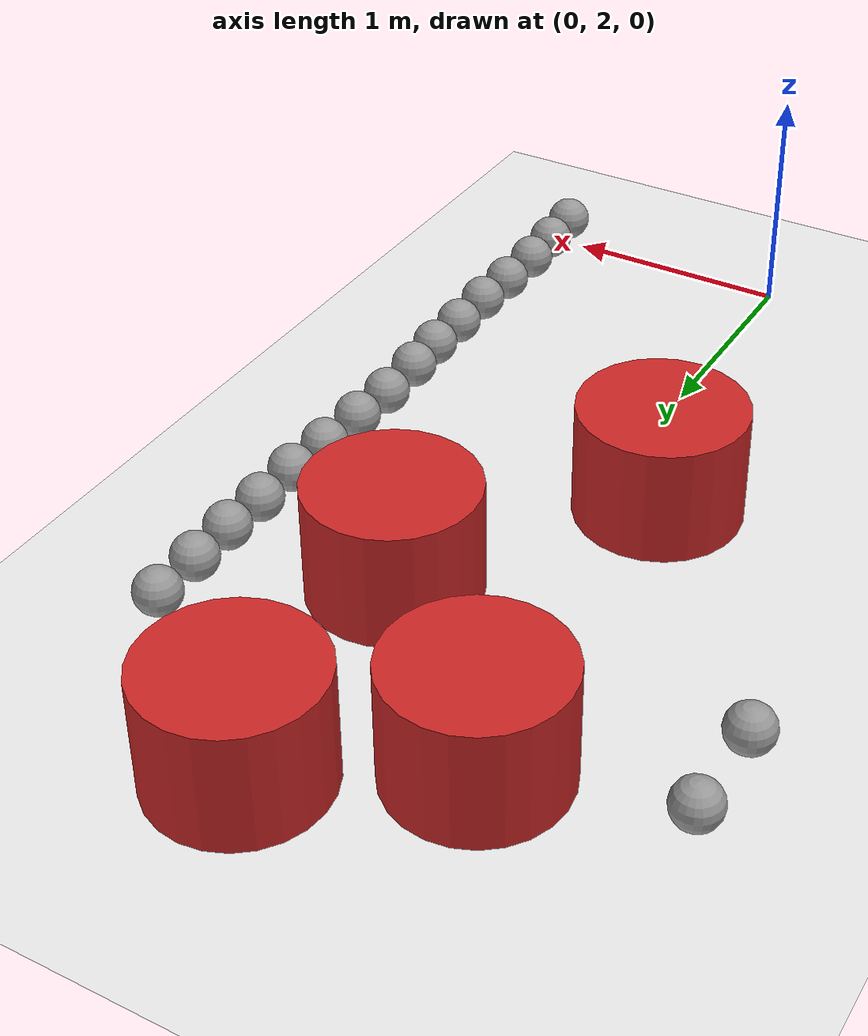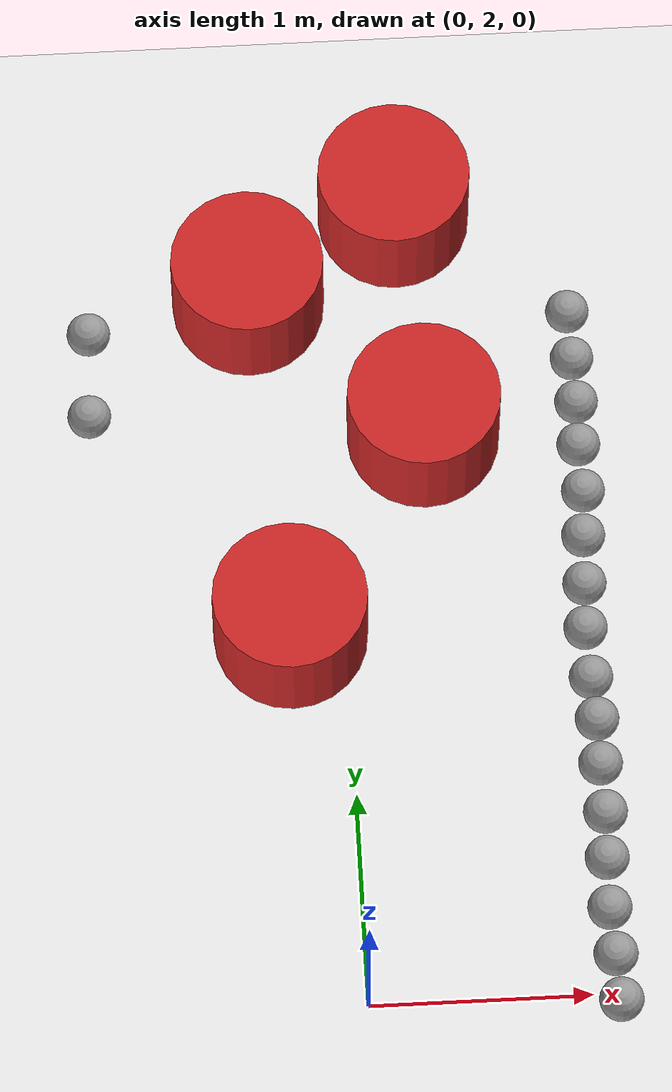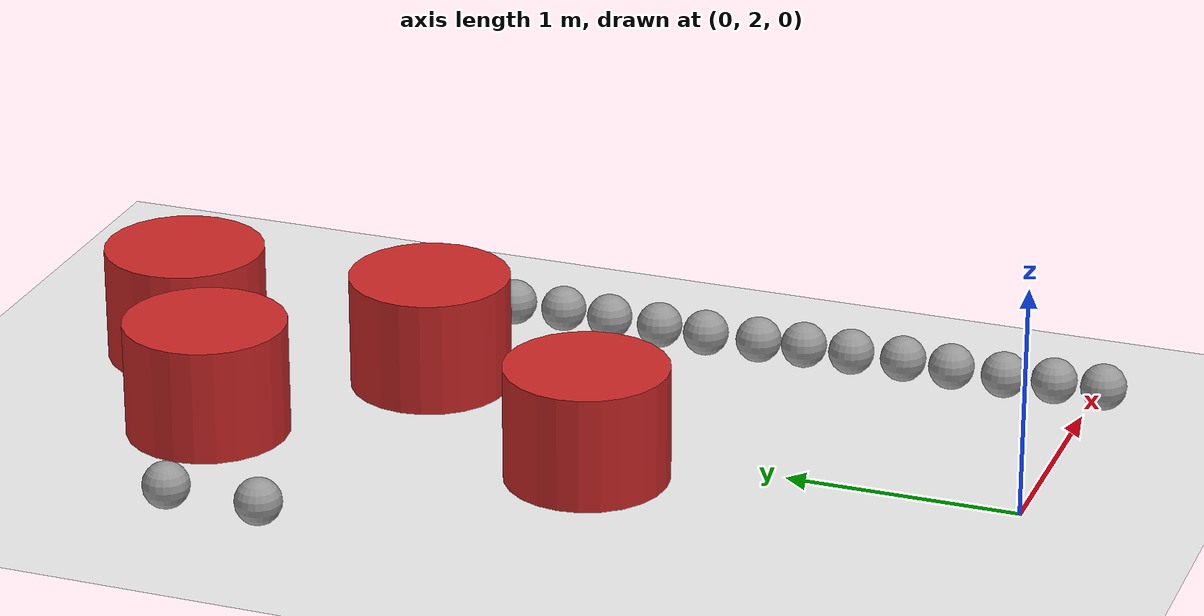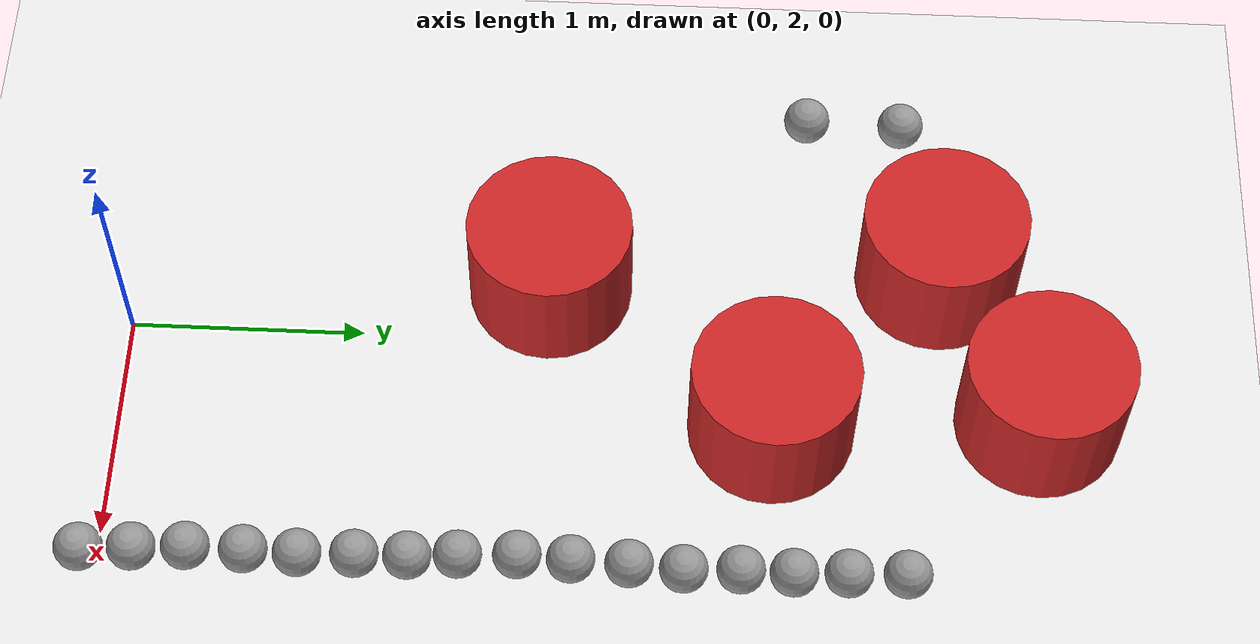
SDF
<sdf version="1.7">
 <world name="default">
  <model name="ground_plane">
   <static>1</static>
   <link name="link">
    <collision name="collision">
     <geometry><plane><normal>0 0 1</normal><size>100 100</size></plane></geometry>
     <surface>
      <contact><collide_bitmask>65535</collide_bitmask></contact>
      <friction><ode><mu>100</mu><mu2>50</mu2></ode></friction>
     </surface>
    </collision>
    <visual name="visual">
     <cast_shadows>0</cast_shadows>
     <geometry><plane><normal>0 0 1</normal><size>100 100</size></plane></geometry>
     <material>
      <script><uri>file://media/materials/scripts/gazebo.material</uri><name>Gazebo/White</name></script>
     </material>
    </visual>
   </link>
  </model>
  <model name="sphere_3">
   <link name="link_0">
    <inertial>
     <mass>1</mass>
     <inertia><ixx>0.1</ixx><ixy>0</ixy><ixz>0</ixz><iyy>0.1</iyy><iyz>0</iyz><izz>0.1</izz></inertia>
    </inertial>
    <visual name="visual">
     <geometry><sphere><radius>0.1</radius></sphere></geometry>
     <material>
      <lighting>1</lighting>
      <script><uri>file://media/materials/scripts/gazebo.material</uri><name>Gazebo/Grey</name></script>
      <shader type="pixel"><normal_map>__default__</normal_map></shader>
      <ambient>0.3 0.3 0.3 1</ambient>
      <diffuse>0.7 0.7 0.7 1</diffuse>
      <specular>0.01 0.01 0.01 1</specular>
      <emissive>0 0 0 1</emissive>
     </material>
    </visual>
    <collision name="collision">
     <geometry><sphere><radius>0.1</radius></sphere></geometry>
     <surface>
      <friction>
       <ode><mu>1</mu><mu2>1</mu2><fdir1>0 0 0</fdir1><slip1>0</slip1><slip2>0</slip2></ode>
       <torsional>
        <coefficient>1</coefficient>
        <patch_radius>0</patch_radius>
        <surface_radius>0</surface_radius>
        <use_patch_radius>1</use_patch_radius>
        <ode><slip>0</slip></ode>
       </torsional>
      </friction>
      <bounce><restitution_coefficient>0</restitution_coefficient><threshold>1e+06</threshold></bounce>
      <contact>
       <collide_without_contact>0</collide_without_contact>
       <collide_without_contact_bitmask>1</collide_without_contact_bitmask>
       <collide_bitmask>1</collide_bitmask>
       <ode>
        <soft_cfm>0</soft_cfm>
        <soft_erp>0.2</soft_erp>
        <kp>1e+13</kp>
        <kd>1</kd>
        <max_vel>0.01</max_vel>
        <min_depth>0</min_depth>
       </ode>
       <bullet>
        <split_impulse>1</split_impulse>
        <split_impulse_penetration_threshold>-0.01</split_impulse_penetration_threshold>
        <soft_cfm>0</soft_cfm>
        <soft_erp>0.2</soft_erp>
        <kp>1e+13</kp>
        <kd>1</kd>
       </bullet>
      </contact>
     </surface>
    </collision>
   </link>
   <static>0</static>
   <pose>1.11654 1.94022 0.1 -0.008745 0.000553 2e-06</pose>
  </model>
  <model name="sphere_4">
   <link name="link_0">
    <inertial>
     <mass>1</mass>
     <inertia><ixx>0.1</ixx><ixy>0</ixy><ixz>0</ixz><iyy>0.1</iyy><iyz>0</iyz><izz>0.1</izz></inertia>
    </inertial>
    <visual name="visual">
     <geometry><sphere><radius>0.1</radius></sphere></geometry>
     <material>
      <lighting>1</lighting>
      <script><uri>file://media/materials/scripts/gazebo.material</uri><name>Gazebo/Grey</name></script>
      <shader type="pixel"><normal_map>__default__</normal_map></shader>
      <ambient>0.3 0.3 0.3 1</ambient>
      <diffuse>0.7 0.7 0.7 1</diffuse>
      <specular>0.01 0.01 0.01 1</specular>
      <emissive>0 0 0 1</emissive>
     </material>
    </visual>
    <collision name="collision">
     <geometry><sphere><radius>0.1</radius></sphere></geometry>
     <surface>
      <friction>
       <ode><mu>1</mu><mu2>1</mu2><fdir1>0 0 0</fdir1><slip1>0</slip1><slip2>0</slip2></ode>
       <torsional>
        <coefficient>1</coefficient>
        <patch_radius>0</patch_radius>
        <surface_radius>0</surface_radius>
        <use_patch_radius>1</use_patch_radius>
        <ode><slip>0</slip></ode>
       </torsional>
      </friction>
      <bounce><restitution_coefficient>0</restitution_coefficient><threshold>1e+06</threshold></bounce>
      <contact>
       <collide_without_contact>0</collide_without_contact>
       <collide_without_contact_bitmask>1</collide_without_contact_bitmask>
       <collide_bitmask>1</collide_bitmask>
       <ode>
        <soft_cfm>0</soft_cfm>
        <soft_erp>0.2</soft_erp>
        <kp>1e+13</kp>
        <kd>1</kd>
        <max_vel>0.01</max_vel>
        <min_depth>0</min_depth>
       </ode>
       <bullet>
        <split_impulse>1</split_impulse>
        <split_impulse_penetration_threshold>-0.01</split_impulse_penetration_threshold>
        <soft_cfm>0</soft_cfm>
        <soft_erp>0.2</soft_erp>
        <kp>1e+13</kp>
        <kd>1</kd>
       </bullet>
      </contact>
     </surface>
    </collision>
   </link>
   <static>0</static>
   <pose>1.10529 2.15475 0.1 0 -0 0</pose>
  </model>
  <model name="sphere_5">
   <link name="link_0">
    <inertial>
     <mass>1</mass>
     <inertia><ixx>0.1</ixx><ixy>0</ixy><ixz>0</ixz><iyy>0.1</iyy><iyz>0</iyz><izz>0.1</izz></inertia>
    </inertial>
    <visual name="visual">
     <geometry><sphere><radius>0.1</radius></sphere></geometry>
     <material>
      <lighting>1</lighting>
      <script><uri>file://media/materials/scripts/gazebo.material</uri><name>Gazebo/Grey</name></script>
      <shader type="pixel"><normal_map>__default__</normal_map></shader>
      <ambient>0.3 0.3 0.3 1</ambient>
      <diffuse>0.7 0.7 0.7 1</diffuse>
      <specular>0.01 0.01 0.01 1</specular>
      <emissive>0 0 0 1</emissive>
     </material>
    </visual>
    <collision name="collision">
     <geometry><sphere><radius>0.1</radius></sphere></geometry>
     <surface>
      <friction>
       <ode><mu>1</mu><mu2>1</mu2><fdir1>0 0 0</fdir1><slip1>0</slip1><slip2>0</slip2></ode>
       <torsional>
        <coefficient>1</coefficient>
        <patch_radius>0</patch_radius>
        <surface_radius>0</surface_radius>
        <use_patch_radius>1</use_patch_radius>
        <ode><slip>0</slip></ode>
       </torsional>
      </friction>
      <bounce><restitution_coefficient>0</restitution_coefficient><threshold>1e+06</threshold></bounce>
      <contact>
       <collide_without_contact>0</collide_without_contact>
       <collide_without_contact_bitmask>1</collide_without_contact_bitmask>
       <collide_bitmask>1</collide_bitmask>
       <ode>
        <soft_cfm>0</soft_cfm>
        <soft_erp>0.2</soft_erp>
        <kp>1e+13</kp>
        <kd>1</kd>
        <max_vel>0.01</max_vel>
        <min_depth>0</min_depth>
       </ode>
       <bullet>
        <split_impulse>1</split_impulse>
        <split_impulse_penetration_threshold>-0.01</split_impulse_penetration_threshold>
        <soft_cfm>0</soft_cfm>
        <soft_erp>0.2</soft_erp>
        <kp>1e+13</kp>
        <kd>1</kd>
       </bullet>
      </contact>
     </surface>
    </collision>
   </link>
   <static>0</static>
   <pose>1.09308 2.37367 0.1 0 -0 0</pose>
  </model>
  <model name="sphere_6">
   <link name="link_0">
    <inertial>
     <mass>1</mass>
     <inertia><ixx>0.1</ixx><ixy>0</ixy><ixz>0</ixz><iyy>0.1</iyy><iyz>0</iyz><izz>0.1</izz></inertia>
    </inertial>
    <visual name="visual">
     <geometry><sphere><radius>0.1</radius></sphere></geometry>
     <material>
      <lighting>1</lighting>
      <script><uri>file://media/materials/scripts/gazebo.material</uri><name>Gazebo/Grey</name></script>
      <shader type="pixel"><normal_map>__default__</normal_map></shader>
      <ambient>0.3 0.3 0.3 1</ambient>
      <diffuse>0.7 0.7 0.7 1</diffuse>
      <specular>0.01 0.01 0.01 1</specular>
      <emissive>0 0 0 1</emissive>
     </material>
    </visual>
    <collision name="collision">
     <geometry><sphere><radius>0.1</radius></sphere></geometry>
     <surface>
      <friction>
       <ode><mu>1</mu><mu2>1</mu2><fdir1>0 0 0</fdir1><slip1>0</slip1><slip2>0</slip2></ode>
       <torsional>
        <coefficient>1</coefficient>
        <patch_radius>0</patch_radius>
        <surface_radius>0</surface_radius>
        <use_patch_radius>1</use_patch_radius>
        <ode><slip>0</slip></ode>
       </torsional>
      </friction>
      <bounce><restitution_coefficient>0</restitution_coefficient><threshold>1e+06</threshold></bounce>
      <contact>
       <collide_without_contact>0</collide_without_contact>
       <collide_without_contact_bitmask>1</collide_without_contact_bitmask>
       <collide_bitmask>1</collide_bitmask>
       <ode>
        <soft_cfm>0</soft_cfm>
        <soft_erp>0.2</soft_erp>
        <kp>1e+13</kp>
        <kd>1</kd>
        <max_vel>0.01</max_vel>
        <min_depth>0</min_depth>
       </ode>
       <bullet>
        <split_impulse>1</split_impulse>
        <split_impulse_penetration_threshold>-0.01</split_impulse_penetration_threshold>
        <soft_cfm>0</soft_cfm>
        <soft_erp>0.2</soft_erp>
        <kp>1e+13</kp>
        <kd>1</kd>
       </bullet>
      </contact>
     </surface>
    </collision>
   </link>
   <static>0</static>
   <pose>1.09702 2.60936 0.1 0 -0 0</pose>
  </model>
  <model name="sphere_7">
   <link name="link_0">
    <inertial>
     <mass>1</mass>
     <inertia><ixx>0.1</ixx><ixy>0</ixy><ixz>0</ixz><iyy>0.1</iyy><iyz>0</iyz><izz>0.1</izz></inertia>
    </inertial>
    <visual name="visual">
     <geometry><sphere><radius>0.1</radius></sphere></geometry>
     <material>
      <lighting>1</lighting>
      <script><uri>file://media/materials/scripts/gazebo.material</uri><name>Gazebo/Grey</name></script>
      <shader type="pixel"><normal_map>__default__</normal_map></shader>
      <ambient>0.3 0.3 0.3 1</ambient>
      <diffuse>0.7 0.7 0.7 1</diffuse>
      <specular>0.01 0.01 0.01 1</specular>
      <emissive>0 0 0 1</emissive>
     </material>
    </visual>
    <collision name="collision">
     <geometry><sphere><radius>0.1</radius></sphere></geometry>
     <surface>
      <friction>
       <ode><mu>1</mu><mu2>1</mu2><fdir1>0 0 0</fdir1><slip1>0</slip1><slip2>0</slip2></ode>
       <torsional>
        <coefficient>1</coefficient>
        <patch_radius>0</patch_radius>
        <surface_radius>0</surface_radius>
        <use_patch_radius>1</use_patch_radius>
        <ode><slip>0</slip></ode>
       </torsional>
      </friction>
      <bounce><restitution_coefficient>0</restitution_coefficient><threshold>1e+06</threshold></bounce>
      <contact>
       <collide_without_contact>0</collide_without_contact>
       <collide_without_contact_bitmask>1</collide_without_contact_bitmask>
       <collide_bitmask>1</collide_bitmask>
       <ode>
        <soft_cfm>0</soft_cfm>
        <soft_erp>0.2</soft_erp>
        <kp>1e+13</kp>
        <kd>1</kd>
        <max_vel>0.01</max_vel>
        <min_depth>0</min_depth>
       </ode>
       <bullet>
        <split_impulse>1</split_impulse>
        <split_impulse_penetration_threshold>-0.01</split_impulse_penetration_threshold>
        <soft_cfm>0</soft_cfm>
        <soft_erp>0.2</soft_erp>
        <kp>1e+13</kp>
        <kd>1</kd>
       </bullet>
      </contact>
     </surface>
    </collision>
   </link>
   <static>0</static>
   <pose>1.10428 2.82821 0.1 0 -0 0</pose>
  </model>
  <model name="sphere_8">
   <link name="link_0">
    <inertial>
     <mass>1</mass>
     <inertia><ixx>0.1</ixx><ixy>0</ixy><ixz>0</ixz><iyy>0.1</iyy><iyz>0</iyz><izz>0.1</izz></inertia>
    </inertial>
    <visual name="visual">
     <geometry><sphere><radius>0.1</radius></sphere></geometry>
     <material>
      <lighting>1</lighting>
      <script><uri>file://media/materials/scripts/gazebo.material</uri><name>Gazebo/Grey</name></script>
      <shader type="pixel"><normal_map>__default__</normal_map></shader>
      <ambient>0.3 0.3 0.3 1</ambient>
      <diffuse>0.7 0.7 0.7 1</diffuse>
      <specular>0.01 0.01 0.01 1</specular>
      <emissive>0 0 0 1</emissive>
     </material>
    </visual>
    <collision name="collision">
     <geometry><sphere><radius>0.1</radius></sphere></geometry>
     <surface>
      <friction>
       <ode><mu>1</mu><mu2>1</mu2><fdir1>0 0 0</fdir1><slip1>0</slip1><slip2>0</slip2></ode>
       <torsional>
        <coefficient>1</coefficient>
        <patch_radius>0</patch_radius>
        <surface_radius>0</surface_radius>
        <use_patch_radius>1</use_patch_radius>
        <ode><slip>0</slip></ode>
       </torsional>
      </friction>
      <bounce><restitution_coefficient>0</restitution_coefficient><threshold>1e+06</threshold></bounce>
      <contact>
       <collide_without_contact>0</collide_without_contact>
       <collide_without_contact_bitmask>1</collide_without_contact_bitmask>
       <collide_bitmask>1</collide_bitmask>
       <ode>
        <soft_cfm>0</soft_cfm>
        <soft_erp>0.2</soft_erp>
        <kp>1e+13</kp>
        <kd>1</kd>
        <max_vel>0.01</max_vel>
        <min_depth>0</min_depth>
       </ode>
       <bullet>
        <split_impulse>1</split_impulse>
        <split_impulse_penetration_threshold>-0.01</split_impulse_penetration_threshold>
        <soft_cfm>0</soft_cfm>
        <soft_erp>0.2</soft_erp>
        <kp>1e+13</kp>
        <kd>1</kd>
       </bullet>
      </contact>
     </surface>
    </collision>
   </link>
   <static>0</static>
   <pose>1.09813 3.0606 0.1 0 -0 0</pose>
  </model>
  <model name="sphere_9">
   <link name="link_0">
    <inertial>
     <mass>1</mass>
     <inertia><ixx>0.1</ixx><ixy>0</ixy><ixz>0</ixz><iyy>0.1</iyy><iyz>0</iyz><izz>0.1</izz></inertia>
    </inertial>
    <visual name="visual">
     <geometry><sphere><radius>0.1</radius></sphere></geometry>
     <material>
      <lighting>1</lighting>
      <script><uri>file://media/materials/scripts/gazebo.material</uri><name>Gazebo/Grey</name></script>
      <shader type="pixel"><normal_map>__default__</normal_map></shader>
      <ambient>0.3 0.3 0.3 1</ambient>
      <diffuse>0.7 0.7 0.7 1</diffuse>
      <specular>0.01 0.01 0.01 1</specular>
      <emissive>0 0 0 1</emissive>
     </material>
    </visual>
    <collision name="collision">
     <geometry><sphere><radius>0.1</radius></sphere></geometry>
     <surface>
      <friction>
       <ode><mu>1</mu><mu2>1</mu2><fdir1>0 0 0</fdir1><slip1>0</slip1><slip2>0</slip2></ode>
       <torsional>
        <coefficient>1</coefficient>
        <patch_radius>0</patch_radius>
        <surface_radius>0</surface_radius>
        <use_patch_radius>1</use_patch_radius>
        <ode><slip>0</slip></ode>
       </torsional>
      </friction>
      <bounce><restitution_coefficient>0</restitution_coefficient><threshold>1e+06</threshold></bounce>
      <contact>
       <collide_without_contact>0</collide_without_contact>
       <collide_without_contact_bitmask>1</collide_without_contact_bitmask>
       <collide_bitmask>1</collide_bitmask>
       <ode>
        <soft_cfm>0</soft_cfm>
        <soft_erp>0.2</soft_erp>
        <kp>1e+13</kp>
        <kd>1</kd>
        <max_vel>0.01</max_vel>
        <min_depth>0</min_depth>
       </ode>
       <bullet>
        <split_impulse>1</split_impulse>
        <split_impulse_penetration_threshold>-0.01</split_impulse_penetration_threshold>
        <soft_cfm>0</soft_cfm>
        <soft_erp>0.2</soft_erp>
        <kp>1e+13</kp>
        <kd>1</kd>
       </bullet>
      </contact>
     </surface>
    </collision>
   </link>
   <static>0</static>
   <pose>1.09675 3.27542 0.1 0 -0 0</pose>
  </model>
  <model name="sphere_10">
   <link name="link_0">
    <inertial>
     <mass>1</mass>
     <inertia><ixx>0.1</ixx><ixy>0</ixy><ixz>0</ixz><iyy>0.1</iyy><iyz>0</iyz><izz>0.1</izz></inertia>
    </inertial>
    <visual name="visual">
     <geometry><sphere><radius>0.1</radius></sphere></geometry>
     <material>
      <lighting>1</lighting>
      <script><uri>file://media/materials/scripts/gazebo.material</uri><name>Gazebo/Grey</name></script>
      <shader type="pixel"><normal_map>__default__</normal_map></shader>
      <ambient>0.3 0.3 0.3 1</ambient>
      <diffuse>0.7 0.7 0.7 1</diffuse>
      <specular>0.01 0.01 0.01 1</specular>
      <emissive>0 0 0 1</emissive>
     </material>
    </visual>
    <collision name="collision">
     <geometry><sphere><radius>0.1</radius></sphere></geometry>
     <surface>
      <friction>
       <ode><mu>1</mu><mu2>1</mu2><fdir1>0 0 0</fdir1><slip1>0</slip1><slip2>0</slip2></ode>
       <torsional>
        <coefficient>1</coefficient>
        <patch_radius>0</patch_radius>
        <surface_radius>0</surface_radius>
        <use_patch_radius>1</use_patch_radius>
        <ode><slip>0</slip></ode>
       </torsional>
      </friction>
      <bounce><restitution_coefficient>0</restitution_coefficient><threshold>1e+06</threshold></bounce>
      <contact>
       <collide_without_contact>0</collide_without_contact>
       <collide_without_contact_bitmask>1</collide_without_contact_bitmask>
       <collide_bitmask>1</collide_bitmask>
       <ode>
        <soft_cfm>0</soft_cfm>
        <soft_erp>0.2</soft_erp>
        <kp>1e+13</kp>
        <kd>1</kd>
        <max_vel>0.01</max_vel>
        <min_depth>0</min_depth>
       </ode>
       <bullet>
        <split_impulse>1</split_impulse>
        <split_impulse_penetration_threshold>-0.01</split_impulse_penetration_threshold>
        <soft_cfm>0</soft_cfm>
        <soft_erp>0.2</soft_erp>
        <kp>1e+13</kp>
        <kd>1</kd>
       </bullet>
      </contact>
     </surface>
    </collision>
   </link>
   <static>0</static>
   <pose>1.08313 3.47908 0.1 0 -0 0</pose>
  </model>
  <model name="sphere_11">
   <link name="link_0">
    <inertial>
     <mass>1</mass>
     <inertia><ixx>0.1</ixx><ixy>0</ixy><ixz>0</ixz><iyy>0.1</iyy><iyz>0</iyz><izz>0.1</izz></inertia>
    </inertial>
    <visual name="visual">
     <geometry><sphere><radius>0.1</radius></sphere></geometry>
     <material>
      <lighting>1</lighting>
      <script><uri>file://media/materials/scripts/gazebo.material</uri><name>Gazebo/Grey</name></script>
      <shader type="pixel"><normal_map>__default__</normal_map></shader>
      <ambient>0.3 0.3 0.3 1</ambient>
      <diffuse>0.7 0.7 0.7 1</diffuse>
      <specular>0.01 0.01 0.01 1</specular>
      <emissive>0 0 0 1</emissive>
     </material>
    </visual>
    <collision name="collision">
     <geometry><sphere><radius>0.1</radius></sphere></geometry>
     <surface>
      <friction>
       <ode><mu>1</mu><mu2>1</mu2><fdir1>0 0 0</fdir1><slip1>0</slip1><slip2>0</slip2></ode>
       <torsional>
        <coefficient>1</coefficient>
        <patch_radius>0</patch_radius>
        <surface_radius>0</surface_radius>
        <use_patch_radius>1</use_patch_radius>
        <ode><slip>0</slip></ode>
       </torsional>
      </friction>
      <bounce><restitution_coefficient>0</restitution_coefficient><threshold>1e+06</threshold></bounce>
      <contact>
       <collide_without_contact>0</collide_without_contact>
       <collide_without_contact_bitmask>1</collide_without_contact_bitmask>
       <collide_bitmask>1</collide_bitmask>
       <ode>
        <soft_cfm>0</soft_cfm>
        <soft_erp>0.2</soft_erp>
        <kp>1e+13</kp>
        <kd>1</kd>
        <max_vel>0.01</max_vel>
        <min_depth>0</min_depth>
       </ode>
       <bullet>
        <split_impulse>1</split_impulse>
        <split_impulse_penetration_threshold>-0.01</split_impulse_penetration_threshold>
        <soft_cfm>0</soft_cfm>
        <soft_erp>0.2</soft_erp>
        <kp>1e+13</kp>
        <kd>1</kd>
       </bullet>
      </contact>
     </surface>
    </collision>
   </link>
   <static>0</static>
   <pose>1.07436 3.719 0.1 0 -0 0</pose>
  </model>
  <model name="sphere_12">
   <link name="link_0">
    <inertial>
     <mass>1</mass>
     <inertia><ixx>0.1</ixx><ixy>0</ixy><ixz>0</ixz><iyy>0.1</iyy><iyz>0</iyz><izz>0.1</izz></inertia>
    </inertial>
    <visual name="visual">
     <geometry><sphere><radius>0.1</radius></sphere></geometry>
     <material>
      <lighting>1</lighting>
      <script><uri>file://media/materials/scripts/gazebo.material</uri><name>Gazebo/Grey</name></script>
      <shader type="pixel"><normal_map>__default__</normal_map></shader>
      <ambient>0.3 0.3 0.3 1</ambient>
      <diffuse>0.7 0.7 0.7 1</diffuse>
      <specular>0.01 0.01 0.01 1</specular>
      <emissive>0 0 0 1</emissive>
     </material>
    </visual>
    <collision name="collision">
     <geometry><sphere><radius>0.1</radius></sphere></geometry>
     <surface>
      <friction>
       <ode><mu>1</mu><mu2>1</mu2><fdir1>0 0 0</fdir1><slip1>0</slip1><slip2>0</slip2></ode>
       <torsional>
        <coefficient>1</coefficient>
        <patch_radius>0</patch_radius>
        <surface_radius>0</surface_radius>
        <use_patch_radius>1</use_patch_radius>
        <ode><slip>0</slip></ode>
       </torsional>
      </friction>
      <bounce><restitution_coefficient>0</restitution_coefficient><threshold>1e+06</threshold></bounce>
      <contact>
       <collide_without_contact>0</collide_without_contact>
       <collide_without_contact_bitmask>1</collide_without_contact_bitmask>
       <collide_bitmask>1</collide_bitmask>
       <ode>
        <soft_cfm>0</soft_cfm>
        <soft_erp>0.2</soft_erp>
        <kp>1e+13</kp>
        <kd>1</kd>
        <max_vel>0.01</max_vel>
        <min_depth>0</min_depth>
       </ode>
       <bullet>
        <split_impulse>1</split_impulse>
        <split_impulse_penetration_threshold>-0.01</split_impulse_penetration_threshold>
        <soft_cfm>0</soft_cfm>
        <soft_erp>0.2</soft_erp>
        <kp>1e+13</kp>
        <kd>1</kd>
       </bullet>
      </contact>
     </surface>
    </collision>
   </link>
   <static>0</static>
   <pose>1.08424 3.93708 0.1 0 -0 0</pose>
  </model>
  <model name="sphere_13">
   <link name="link_0">
    <inertial>
     <mass>1</mass>
     <inertia><ixx>0.1</ixx><ixy>0</ixy><ixz>0</ixz><iyy>0.1</iyy><iyz>0</iyz><izz>0.1</izz></inertia>
    </inertial>
    <visual name="visual">
     <geometry><sphere><radius>0.1</radius></sphere></geometry>
     <material>
      <lighting>1</lighting>
      <script><uri>file://media/materials/scripts/gazebo.material</uri><name>Gazebo/Grey</name></script>
      <shader type="pixel"><normal_map>__default__</normal_map></shader>
      <ambient>0.3 0.3 0.3 1</ambient>
      <diffuse>0.7 0.7 0.7 1</diffuse>
      <specular>0.01 0.01 0.01 1</specular>
      <emissive>0 0 0 1</emissive>
     </material>
    </visual>
    <collision name="collision">
     <geometry><sphere><radius>0.1</radius></sphere></geometry>
     <surface>
      <friction>
       <ode><mu>1</mu><mu2>1</mu2><fdir1>0 0 0</fdir1><slip1>0</slip1><slip2>0</slip2></ode>
       <torsional>
        <coefficient>1</coefficient>
        <patch_radius>0</patch_radius>
        <surface_radius>0</surface_radius>
        <use_patch_radius>1</use_patch_radius>
        <ode><slip>0</slip></ode>
       </torsional>
      </friction>
      <bounce><restitution_coefficient>0</restitution_coefficient><threshold>1e+06</threshold></bounce>
      <contact>
       <collide_without_contact>0</collide_without_contact>
       <collide_without_contact_bitmask>1</collide_without_contact_bitmask>
       <collide_bitmask>1</collide_bitmask>
       <ode>
        <soft_cfm>0</soft_cfm>
        <soft_erp>0.2</soft_erp>
        <kp>1e+13</kp>
        <kd>1</kd>
        <max_vel>0.01</max_vel>
        <min_depth>0</min_depth>
       </ode>
       <bullet>
        <split_impulse>1</split_impulse>
        <split_impulse_penetration_threshold>-0.01</split_impulse_penetration_threshold>
        <soft_cfm>0</soft_cfm>
        <soft_erp>0.2</soft_erp>
        <kp>1e+13</kp>
        <kd>1</kd>
       </bullet>
      </contact>
     </surface>
    </collision>
   </link>
   <static>0</static>
   <pose>1.09415 4.17387 0.1 0 -0 0</pose>
  </model>
  <model name="sphere_14">
   <link name="link_0">
    <inertial>
     <mass>1</mass>
     <inertia><ixx>0.1</ixx><ixy>0</ixy><ixz>0</ixz><iyy>0.1</iyy><iyz>0</iyz><izz>0.1</izz></inertia>
    </inertial>
    <visual name="visual">
     <geometry><sphere><radius>0.1</radius></sphere></geometry>
     <material>
      <lighting>1</lighting>
      <script><uri>file://media/materials/scripts/gazebo.material</uri><name>Gazebo/Grey</name></script>
      <shader type="pixel"><normal_map>__default__</normal_map></shader>
      <ambient>0.3 0.3 0.3 1</ambient>
      <diffuse>0.7 0.7 0.7 1</diffuse>
      <specular>0.01 0.01 0.01 1</specular>
      <emissive>0 0 0 1</emissive>
     </material>
    </visual>
    <collision name="collision">
     <geometry><sphere><radius>0.1</radius></sphere></geometry>
     <surface>
      <friction>
       <ode><mu>1</mu><mu2>1</mu2><fdir1>0 0 0</fdir1><slip1>0</slip1><slip2>0</slip2></ode>
       <torsional>
        <coefficient>1</coefficient>
        <patch_radius>0</patch_radius>
        <surface_radius>0</surface_radius>
        <use_patch_radius>1</use_patch_radius>
        <ode><slip>0</slip></ode>
       </torsional>
      </friction>
      <bounce><restitution_coefficient>0</restitution_coefficient><threshold>1e+06</threshold></bounce>
      <contact>
       <collide_without_contact>0</collide_without_contact>
       <collide_without_contact_bitmask>1</collide_without_contact_bitmask>
       <collide_bitmask>1</collide_bitmask>
       <ode>
        <soft_cfm>0</soft_cfm>
        <soft_erp>0.2</soft_erp>
        <kp>1e+13</kp>
        <kd>1</kd>
        <max_vel>0.01</max_vel>
        <min_depth>0</min_depth>
       </ode>
       <bullet>
        <split_impulse>1</split_impulse>
        <split_impulse_penetration_threshold>-0.01</split_impulse_penetration_threshold>
        <soft_cfm>0</soft_cfm>
        <soft_erp>0.2</soft_erp>
        <kp>1e+13</kp>
        <kd>1</kd>
       </bullet>
      </contact>
     </surface>
    </collision>
   </link>
   <static>0</static>
   <pose>1.10807 4.39527 0.1 0 -0 0</pose>
  </model>
  <model name="sphere_15">
   <link name="link_0">
    <inertial>
     <mass>1</mass>
     <inertia><ixx>0.1</ixx><ixy>0</ixy><ixz>0</ixz><iyy>0.1</iyy><iyz>0</iyz><izz>0.1</izz></inertia>
    </inertial>
    <visual name="visual">
     <geometry><sphere><radius>0.1</radius></sphere></geometry>
     <material>
      <lighting>1</lighting>
      <script><uri>file://media/materials/scripts/gazebo.material</uri><name>Gazebo/Grey</name></script>
      <shader type="pixel"><normal_map>__default__</normal_map></shader>
      <ambient>0.3 0.3 0.3 1</ambient>
      <diffuse>0.7 0.7 0.7 1</diffuse>
      <specular>0.01 0.01 0.01 1</specular>
      <emissive>0 0 0 1</emissive>
     </material>
    </visual>
    <collision name="collision">
     <geometry><sphere><radius>0.1</radius></sphere></geometry>
     <surface>
      <friction>
       <ode><mu>1</mu><mu2>1</mu2><fdir1>0 0 0</fdir1><slip1>0</slip1><slip2>0</slip2></ode>
       <torsional>
        <coefficient>1</coefficient>
        <patch_radius>0</patch_radius>
        <surface_radius>0</surface_radius>
        <use_patch_radius>1</use_patch_radius>
        <ode><slip>0</slip></ode>
       </torsional>
      </friction>
      <bounce><restitution_coefficient>0</restitution_coefficient><threshold>1e+06</threshold></bounce>
      <contact>
       <collide_without_contact>0</collide_without_contact>
       <collide_without_contact_bitmask>1</collide_without_contact_bitmask>
       <collide_bitmask>1</collide_bitmask>
       <ode>
        <soft_cfm>0</soft_cfm>
        <soft_erp>0.2</soft_erp>
        <kp>1e+13</kp>
        <kd>1</kd>
        <max_vel>0.01</max_vel>
        <min_depth>0</min_depth>
       </ode>
       <bullet>
        <split_impulse>1</split_impulse>
        <split_impulse_penetration_threshold>-0.01</split_impulse_penetration_threshold>
        <soft_cfm>0</soft_cfm>
        <soft_erp>0.2</soft_erp>
        <kp>1e+13</kp>
        <kd>1</kd>
       </bullet>
      </contact>
     </surface>
    </collision>
   </link>
   <static>0</static>
   <pose>1.10192 4.62639 0.1 0 -0 0</pose>
  </model>
  <model name="sphere_16">
   <link name="link_0">
    <inertial>
     <mass>1</mass>
     <inertia><ixx>0.1</ixx><ixy>0</ixy><ixz>0</ixz><iyy>0.1</iyy><iyz>0</iyz><izz>0.1</izz></inertia>
    </inertial>
    <visual name="visual">
     <geometry><sphere><radius>0.1</radius></sphere></geometry>
     <material>
      <lighting>1</lighting>
      <script><uri>file://media/materials/scripts/gazebo.material</uri><name>Gazebo/Grey</name></script>
      <shader type="pixel"><normal_map>__default__</normal_map></shader>
      <ambient>0.3 0.3 0.3 1</ambient>
      <diffuse>0.7 0.7 0.7 1</diffuse>
      <specular>0.01 0.01 0.01 1</specular>
      <emissive>0 0 0 1</emissive>
     </material>
    </visual>
    <collision name="collision">
     <geometry><sphere><radius>0.1</radius></sphere></geometry>
     <surface>
      <friction>
       <ode><mu>1</mu><mu2>1</mu2><fdir1>0 0 0</fdir1><slip1>0</slip1><slip2>0</slip2></ode>
       <torsional>
        <coefficient>1</coefficient>
        <patch_radius>0</patch_radius>
        <surface_radius>0</surface_radius>
        <use_patch_radius>1</use_patch_radius>
        <ode><slip>0</slip></ode>
       </torsional>
      </friction>
      <bounce><restitution_coefficient>0</restitution_coefficient><threshold>1e+06</threshold></bounce>
      <contact>
       <collide_without_contact>0</collide_without_contact>
       <collide_without_contact_bitmask>1</collide_without_contact_bitmask>
       <collide_bitmask>1</collide_bitmask>
       <ode>
        <soft_cfm>0</soft_cfm>
        <soft_erp>0.2</soft_erp>
        <kp>1e+13</kp>
        <kd>1</kd>
        <max_vel>0.01</max_vel>
        <min_depth>0</min_depth>
       </ode>
       <bullet>
        <split_impulse>1</split_impulse>
        <split_impulse_penetration_threshold>-0.01</split_impulse_penetration_threshold>
        <soft_cfm>0</soft_cfm>
        <soft_erp>0.2</soft_erp>
        <kp>1e+13</kp>
        <kd>1</kd>
       </bullet>
      </contact>
     </surface>
    </collision>
   </link>
   <static>0</static>
   <pose>1.1058 4.84077 0.1 0 -0 0</pose>
  </model>
  <model name="sphere_17">
   <link name="link_0">
    <inertial>
     <mass>1</mass>
     <inertia><ixx>0.1</ixx><ixy>0</ixy><ixz>0</ixz><iyy>0.1</iyy><iyz>0</iyz><izz>0.1</izz></inertia>
    </inertial>
    <visual name="visual">
     <geometry><sphere><radius>0.1</radius></sphere></geometry>
     <material>
      <lighting>1</lighting>
      <script><uri>file://media/materials/scripts/gazebo.material</uri><name>Gazebo/Grey</name></script>
      <shader type="pixel"><normal_map>__default__</normal_map></shader>
      <ambient>0.3 0.3 0.3 1</ambient>
      <diffuse>0.7 0.7 0.7 1</diffuse>
      <specular>0.01 0.01 0.01 1</specular>
      <emissive>0 0 0 1</emissive>
     </material>
    </visual>
    <collision name="collision">
     <geometry><sphere><radius>0.1</radius></sphere></geometry>
     <surface>
      <friction>
       <ode><mu>1</mu><mu2>1</mu2><fdir1>0 0 0</fdir1><slip1>0</slip1><slip2>0</slip2></ode>
       <torsional>
        <coefficient>1</coefficient>
        <patch_radius>0</patch_radius>
        <surface_radius>0</surface_radius>
        <use_patch_radius>1</use_patch_radius>
        <ode><slip>0</slip></ode>
       </torsional>
      </friction>
      <bounce><restitution_coefficient>0</restitution_coefficient><threshold>1e+06</threshold></bounce>
      <contact>
       <collide_without_contact>0</collide_without_contact>
       <collide_without_contact_bitmask>1</collide_without_contact_bitmask>
       <collide_bitmask>1</collide_bitmask>
       <ode>
        <soft_cfm>0</soft_cfm>
        <soft_erp>0.2</soft_erp>
        <kp>1e+13</kp>
        <kd>1</kd>
        <max_vel>0.01</max_vel>
        <min_depth>0</min_depth>
       </ode>
       <bullet>
        <split_impulse>1</split_impulse>
        <split_impulse_penetration_threshold>-0.01</split_impulse_penetration_threshold>
        <soft_cfm>0</soft_cfm>
        <soft_erp>0.2</soft_erp>
        <kp>1e+13</kp>
        <kd>1</kd>
       </bullet>
      </contact>
     </surface>
    </collision>
   </link>
   <static>0</static>
   <pose>1.09964 5.06189 0.1 0 -0 0</pose>
  </model>
  <model name="sphere_18">
   <link name="link_0">
    <inertial>
     <mass>1</mass>
     <inertia><ixx>0.1</ixx><ixy>0</ixy><ixz>0</ixz><iyy>0.1</iyy><iyz>0</iyz><izz>0.1</izz></inertia>
    </inertial>
    <visual name="visual">
     <geometry><sphere><radius>0.1</radius></sphere></geometry>
     <material>
      <lighting>1</lighting>
      <script><uri>file://media/materials/scripts/gazebo.material</uri><name>Gazebo/Grey</name></script>
      <shader type="pixel"><normal_map>__default__</normal_map></shader>
      <ambient>0.3 0.3 0.3 1</ambient>
      <diffuse>0.7 0.7 0.7 1</diffuse>
      <specular>0.01 0.01 0.01 1</specular>
      <emissive>0 0 0 1</emissive>
     </material>
    </visual>
    <collision name="collision">
     <geometry><sphere><radius>0.1</radius></sphere></geometry>
     <surface>
      <friction>
       <ode><mu>1</mu><mu2>1</mu2><fdir1>0 0 0</fdir1><slip1>0</slip1><slip2>0</slip2></ode>
       <torsional>
        <coefficient>1</coefficient>
        <patch_radius>0</patch_radius>
        <surface_radius>0</surface_radius>
        <use_patch_radius>1</use_patch_radius>
        <ode><slip>0</slip></ode>
       </torsional>
      </friction>
      <bounce><restitution_coefficient>0</restitution_coefficient><threshold>1e+06</threshold></bounce>
      <contact>
       <collide_without_contact>0</collide_without_contact>
       <collide_without_contact_bitmask>1</collide_without_contact_bitmask>
       <collide_bitmask>1</collide_bitmask>
       <ode>
        <soft_cfm>0</soft_cfm>
        <soft_erp>0.2</soft_erp>
        <kp>1e+13</kp>
        <kd>1</kd>
        <max_vel>0.01</max_vel>
        <min_depth>0</min_depth>
       </ode>
       <bullet>
        <split_impulse>1</split_impulse>
        <split_impulse_penetration_threshold>-0.01</split_impulse_penetration_threshold>
        <soft_cfm>0</soft_cfm>
        <soft_erp>0.2</soft_erp>
        <kp>1e+13</kp>
        <kd>1</kd>
       </bullet>
      </contact>
     </surface>
    </collision>
   </link>
   <static>0</static>
   <pose>1.09352 5.29976 0.1 0 -0 0</pose>
  </model>
  <model name="sphere_19">
   <link name="link_0">
    <inertial>
     <mass>1</mass>
     <inertia><ixx>0.1</ixx><ixy>0</ixy><ixz>0</ixz><iyy>0.1</iyy><iyz>0</iyz><izz>0.1</izz></inertia>
    </inertial>
    <visual name="visual">
     <geometry><sphere><radius>0.1</radius></sphere></geometry>
     <material>
      <lighting>1</lighting>
      <script><uri>file://media/materials/scripts/gazebo.material</uri><name>Gazebo/Grey</name></script>
      <shader type="pixel"><normal_map>__default__</normal_map></shader>
      <ambient>0.3 0.3 0.3 1</ambient>
      <diffuse>0.7 0.7 0.7 1</diffuse>
      <specular>0.01 0.01 0.01 1</specular>
      <emissive>0 0 0 1</emissive>
     </material>
    </visual>
    <collision name="collision">
     <geometry><sphere><radius>0.1</radius></sphere></geometry>
     <surface>
      <friction>
       <ode><mu>1</mu><mu2>1</mu2><fdir1>0 0 0</fdir1><slip1>0</slip1><slip2>0</slip2></ode>
       <torsional>
        <coefficient>1</coefficient>
        <patch_radius>0</patch_radius>
        <surface_radius>0</surface_radius>
        <use_patch_radius>1</use_patch_radius>
        <ode><slip>0</slip></ode>
       </torsional>
      </friction>
      <bounce><restitution_coefficient>0</restitution_coefficient><threshold>1e+06</threshold></bounce>
      <contact>
       <collide_without_contact>0</collide_without_contact>
       <collide_without_contact_bitmask>1</collide_without_contact_bitmask>
       <collide_bitmask>1</collide_bitmask>
       <ode>
        <soft_cfm>0</soft_cfm>
        <soft_erp>0.2</soft_erp>
        <kp>1e+13</kp>
        <kd>1</kd>
        <max_vel>0.01</max_vel>
        <min_depth>0</min_depth>
       </ode>
       <bullet>
        <split_impulse>1</split_impulse>
        <split_impulse_penetration_threshold>-0.01</split_impulse_penetration_threshold>
        <soft_cfm>0</soft_cfm>
        <soft_erp>0.2</soft_erp>
        <kp>1e+13</kp>
        <kd>1</kd>
       </bullet>
      </contact>
     </surface>
    </collision>
   </link>
   <static>0</static>
   <pose>-1.11929 5.29738 0.1 -0.007911 0.000637 2e-06</pose>
  </model>
  <model name="sphere_21">
   <link name="link_0">
    <inertial>
     <mass>1</mass>
     <inertia><ixx>0.1</ixx><ixy>0</ixy><ixz>0</ixz><iyy>0.1</iyy><iyz>0</iyz><izz>0.1</izz></inertia>
    </inertial>
    <visual name="visual">
     <geometry><sphere><radius>0.1</radius></sphere></geometry>
     <material>
      <lighting>1</lighting>
      <script><uri>file://media/materials/scripts/gazebo.material</uri><name>Gazebo/Grey</name></script>
      <shader type="pixel"><normal_map>__default__</normal_map></shader>
      <ambient>0.3 0.3 0.3 1</ambient>
      <diffuse>0.7 0.7 0.7 1</diffuse>
      <specular>0.01 0.01 0.01 1</specular>
      <emissive>0 0 0 1</emissive>
     </material>
    </visual>
    <collision name="collision">
     <geometry><sphere><radius>0.1</radius></sphere></geometry>
     <surface>
      <friction>
       <ode><mu>1</mu><mu2>1</mu2><fdir1>0 0 0</fdir1><slip1>0</slip1><slip2>0</slip2></ode>
       <torsional>
        <coefficient>1</coefficient>
        <patch_radius>0</patch_radius>
        <surface_radius>0</surface_radius>
        <use_patch_radius>1</use_patch_radius>
        <ode><slip>0</slip></ode>
       </torsional>
      </friction>
      <bounce><restitution_coefficient>0</restitution_coefficient><threshold>1e+06</threshold></bounce>
      <contact>
       <collide_without_contact>0</collide_without_contact>
       <collide_without_contact_bitmask>1</collide_without_contact_bitmask>
       <collide_bitmask>1</collide_bitmask>
       <ode>
        <soft_cfm>0</soft_cfm>
        <soft_erp>0.2</soft_erp>
        <kp>1e+13</kp>
        <kd>1</kd>
        <max_vel>0.01</max_vel>
        <min_depth>0</min_depth>
       </ode>
       <bullet>
        <split_impulse>1</split_impulse>
        <split_impulse_penetration_threshold>-0.01</split_impulse_penetration_threshold>
        <soft_cfm>0</soft_cfm>
        <soft_erp>0.2</soft_erp>
        <kp>1e+13</kp>
        <kd>1</kd>
       </bullet>
      </contact>
     </surface>
    </collision>
   </link>
   <static>0</static>
   <pose>-1.13033 4.88212 0.1 -0.007865 0.000403 3e-06</pose>
  </model>
  <model name="model8.1_0">
   <model name="8.1_0">
    <model name="model8.1">
     <link name="link_1">
      <inertial>
       <mass>1</mass>
       <inertia><ixx>0.145833</ixx><ixy>0</ixy><ixz>0</ixz><iyy>0.145833</iyy><iyz>0</iyz><izz>0.125</izz></inertia>
      </inertial>
      <visual name="visual">
       <geometry><cylinder><radius>0.35</radius><length>0.5</length></cylinder></geometry>
       <material>
        <lighting>1</lighting>
        <script><uri>file://media/materials/scripts/gazebo.material</uri><name>Gazebo/Red</name></script>
        <shader type="pixel"><normal_map>__default__</normal_map></shader>
        <ambient>0.3 0.3 0.3 1</ambient>
        <diffuse>0.7 0.7 0.7 1</diffuse>
        <specular>0.01 0.01 0.01 1</specular>
        <emissive>0 0 0 1</emissive>
       </material>
      </visual>
      <collision name="collision">
       <geometry><cylinder><radius>0.35</radius><length>0.5</length></cylinder></geometry>
       <surface>
        <friction>
         <ode><mu>1</mu><mu2>1</mu2><fdir1>0 0 0</fdir1><slip1>0</slip1><slip2>0</slip2></ode>
         <torsional>
          <coefficient>1</coefficient>
          <patch_radius>0</patch_radius>
          <surface_radius>0</surface_radius>
          <use_patch_radius>1</use_patch_radius>
          <ode><slip>0</slip></ode>
         </torsional>
        </friction>
        <bounce><restitution_coefficient>0</restitution_coefficient><threshold>1e+06</threshold></bounce>
        <contact>
         <collide_without_contact>0</collide_without_contact>
         <collide_without_contact_bitmask>1</collide_without_contact_bitmask>
         <collide_bitmask>1</collide_bitmask>
         <ode>
          <soft_cfm>0</soft_cfm>
          <soft_erp>0.2</soft_erp>
          <kp>1e+13</kp>
          <kd>1</kd>
          <max_vel>0.01</max_vel>
          <min_depth>0</min_depth>
         </ode>
         <bullet>
          <split_impulse>1</split_impulse>
          <split_impulse_penetration_threshold>-0.01</split_impulse_penetration_threshold>
          <soft_cfm>0</soft_cfm>
          <soft_erp>0.2</soft_erp>
          <kp>1e+13</kp>
          <kd>1</kd>
         </bullet>
        </contact>
       </surface>
      </collision>
     </link>
     <static>0</static>
     <pose>1e-06 -5e-06 0 0 -0 0</pose>
    </model>
    <static>0</static>
   </model>
   <static>0</static>
   <pose>0.319702 5.8604 0.249991 0 -0 0</pose>
  </model>
  <model name="model8.1_1">
   <model name="8.1_1">
    <model name="model8.1">
     <link name="link_1">
      <inertial>
       <mass>1</mass>
       <inertia><ixx>0.145833</ixx><ixy>0</ixy><ixz>0</ixz><iyy>0.145833</iyy><iyz>0</iyz><izz>0.125</izz></inertia>
      </inertial>
      <visual name="visual">
       <geometry><cylinder><radius>0.35</radius><length>0.5</length></cylinder></geometry>
       <material>
        <lighting>1</lighting>
        <script><uri>file://media/materials/scripts/gazebo.material</uri><name>Gazebo/Red</name></script>
        <shader type="pixel"><normal_map>__default__</normal_map></shader>
        <ambient>0.3 0.3 0.3 1</ambient>
        <diffuse>0.7 0.7 0.7 1</diffuse>
        <specular>0.01 0.01 0.01 1</specular>
        <emissive>0 0 0 1</emissive>
       </material>
      </visual>
      <collision name="collision">
       <geometry><cylinder><radius>0.35</radius><length>0.5</length></cylinder></geometry>
       <surface>
        <friction>
         <ode><mu>1</mu><mu2>1</mu2><fdir1>0 0 0</fdir1><slip1>0</slip1><slip2>0</slip2></ode>
         <torsional>
          <coefficient>1</coefficient>
          <patch_radius>0</patch_radius>
          <surface_radius>0</surface_radius>
          <use_patch_radius>1</use_patch_radius>
          <ode><slip>0</slip></ode>
         </torsional>
        </friction>
        <bounce><restitution_coefficient>0</restitution_coefficient><threshold>1e+06</threshold></bounce>
        <contact>
         <collide_without_contact>0</collide_without_contact>
         <collide_without_contact_bitmask>1</collide_without_contact_bitmask>
         <collide_bitmask>1</collide_bitmask>
         <ode>
          <soft_cfm>0</soft_cfm>
          <soft_erp>0.2</soft_erp>
          <kp>1e+13</kp>
          <kd>1</kd>
          <max_vel>0.01</max_vel>
          <min_depth>0</min_depth>
         </ode>
         <bullet>
          <split_impulse>1</split_impulse>
          <split_impulse_penetration_threshold>-0.01</split_impulse_penetration_threshold>
          <soft_cfm>0</soft_cfm>
          <soft_erp>0.2</soft_erp>
          <kp>1e+13</kp>
          <kd>1</kd>
         </bullet>
        </contact>
       </surface>
      </collision>
     </link>
     <static>0</static>
     <pose>3e-06 -0 0 0 -0 0</pose>
    </model>
    <static>0</static>
    <pose>4e-06 -4e-06 0 0 -0 0</pose>
   </model>
   <static>0</static>
   <pose>-0.375293 5.44793 0.249991 0 -0 0</pose>
  </model>
  <model name="model8.2_0">
   <model name="model8.1_3">
    <link name="link_1">
     <inertial>
      <mass>1</mass>
      <inertia><ixx>0.145833</ixx><ixy>0</ixy><ixz>0</ixz><iyy>0.145833</iyy><iyz>0</iyz><izz>0.125</izz></inertia>
     </inertial>
     <visual name="visual">
      <geometry><cylinder><radius>0.35</radius><length>0.5</length></cylinder></geometry>
      <material>
       <lighting>1</lighting>
       <script><uri>file://media/materials/scripts/gazebo.material</uri><name>Gazebo/Red</name></script>
       <shader type="pixel"><normal_map>__default__</normal_map></shader>
       <ambient>0 1 0 1</ambient>
       <diffuse>0.7 0.7 0.7 1</diffuse>
       <specular>0.01 0.01 0.01 1</specular>
       <emissive>0 0 0 1</emissive>
      </material>
     </visual>
     <collision name="collision">
      <geometry><cylinder><radius>0.35</radius><length>0.5</length></cylinder></geometry>
      <surface>
       <friction>
        <ode><mu>1</mu><mu2>1</mu2><fdir1>0 0 0</fdir1><slip1>0</slip1><slip2>0</slip2></ode>
        <torsional>
         <coefficient>1</coefficient>
         <patch_radius>0</patch_radius>
         <surface_radius>0</surface_radius>
         <use_patch_radius>1</use_patch_radius>
         <ode><slip>0</slip></ode>
        </torsional>
       </friction>
       <bounce><restitution_coefficient>0</restitution_coefficient><threshold>1e+06</threshold></bounce>
       <contact>
        <collide_without_contact>0</collide_without_contact>
        <collide_without_contact_bitmask>1</collide_without_contact_bitmask>
        <collide_bitmask>1</collide_bitmask>
        <ode>
         <soft_cfm>0</soft_cfm>
         <soft_erp>0.2</soft_erp>
         <kp>1e+13</kp>
         <kd>1</kd>
         <max_vel>0.01</max_vel>
         <min_depth>0</min_depth>
        </ode>
        <bullet>
         <split_impulse>1</split_impulse>
         <split_impulse_penetration_threshold>-0.01</split_impulse_penetration_threshold>
         <soft_cfm>0</soft_cfm>
         <soft_erp>0.2</soft_erp>
         <kp>1e+13</kp>
         <kd>1</kd>
        </bullet>
       </contact>
      </surface>
     </collision>
    </link>
    <static>0</static>
    <pose>-4e-06 4e-06 0 0 -0 0</pose>
   </model>
   <static>0</static>
   <pose>0.396729 4.74295 0.249991 0 -0 0</pose>
  </model>
  <model name="model8.2_1">
   <model name="model8.1_3">
    <link name="link_1">
     <inertial>
      <mass>1</mass>
      <inertia><ixx>0.145833</ixx><ixy>0</ixy><ixz>0</ixz><iyy>0.145833</iyy><iyz>0</iyz><izz>0.125</izz></inertia>
     </inertial>
     <visual name="visual">
      <geometry><cylinder><radius>0.35</radius><length>0.5</length></cylinder></geometry>
      <material>
       <lighting>1</lighting>
       <script><uri>file://media/materials/scripts/gazebo.material</uri><name>Gazebo/Red</name></script>
       <shader type="pixel"><normal_map>__default__</normal_map></shader>
       <ambient>0 1 0 1</ambient>
       <diffuse>0.7 0.7 0.7 1</diffuse>
       <specular>0.01 0.01 0.01 1</specular>
       <emissive>0 0 0 1</emissive>
      </material>
     </visual>
     <collision name="collision">
      <geometry><cylinder><radius>0.35</radius><length>0.5</length></cylinder></geometry>
      <surface>
       <friction>
        <ode><mu>1</mu><mu2>1</mu2><fdir1>0 0 0</fdir1><slip1>0</slip1><slip2>0</slip2></ode>
        <torsional>
         <coefficient>1</coefficient>
         <patch_radius>0</patch_radius>
         <surface_radius>0</surface_radius>
         <use_patch_radius>1</use_patch_radius>
         <ode><slip>0</slip></ode>
        </torsional>
       </friction>
       <bounce><restitution_coefficient>0</restitution_coefficient><threshold>1e+06</threshold></bounce>
       <contact>
        <collide_without_contact>0</collide_without_contact>
        <collide_without_contact_bitmask>1</collide_without_contact_bitmask>
        <collide_bitmask>1</collide_bitmask>
        <ode>
         <soft_cfm>0</soft_cfm>
         <soft_erp>0.2</soft_erp>
         <kp>1e+13</kp>
         <kd>1</kd>
         <max_vel>0.01</max_vel>
         <min_depth>0</min_depth>
        </ode>
        <bullet>
         <split_impulse>1</split_impulse>
         <split_impulse_penetration_threshold>-0.01</split_impulse_penetration_threshold>
         <soft_cfm>0</soft_cfm>
         <soft_erp>0.2</soft_erp>
         <kp>1e+13</kp>
         <kd>1</kd>
        </bullet>
       </contact>
      </surface>
     </collision>
    </link>
    <static>0</static>
    <pose>4e-06 -0 0 0 -0 0</pose>
   </model>
   <static>0</static>
   <pose>-0.25894 3.78481 0.249991 0 -0 0</pose>
  </model>
 </world>
</sdf>
